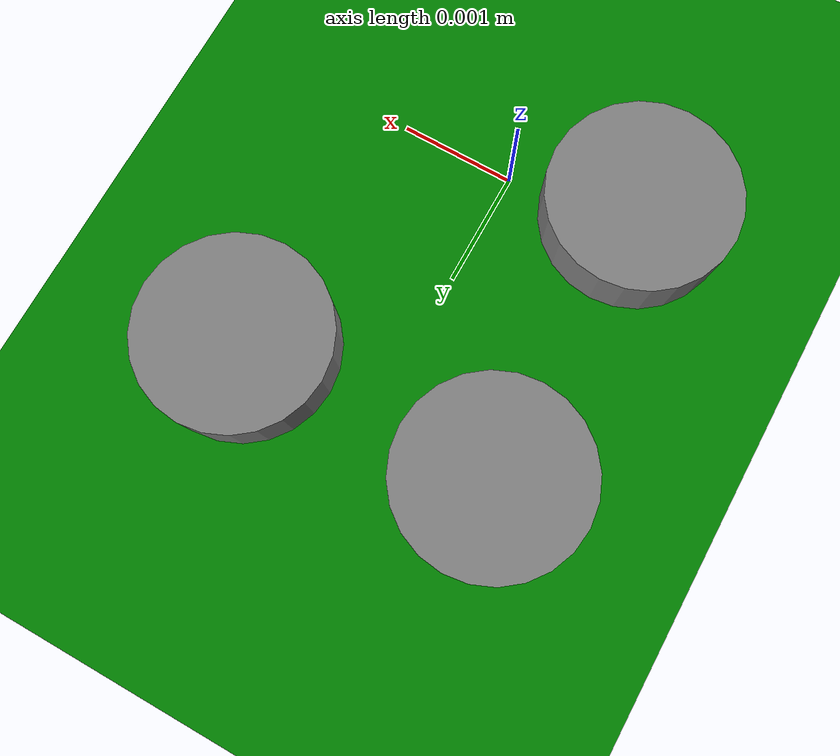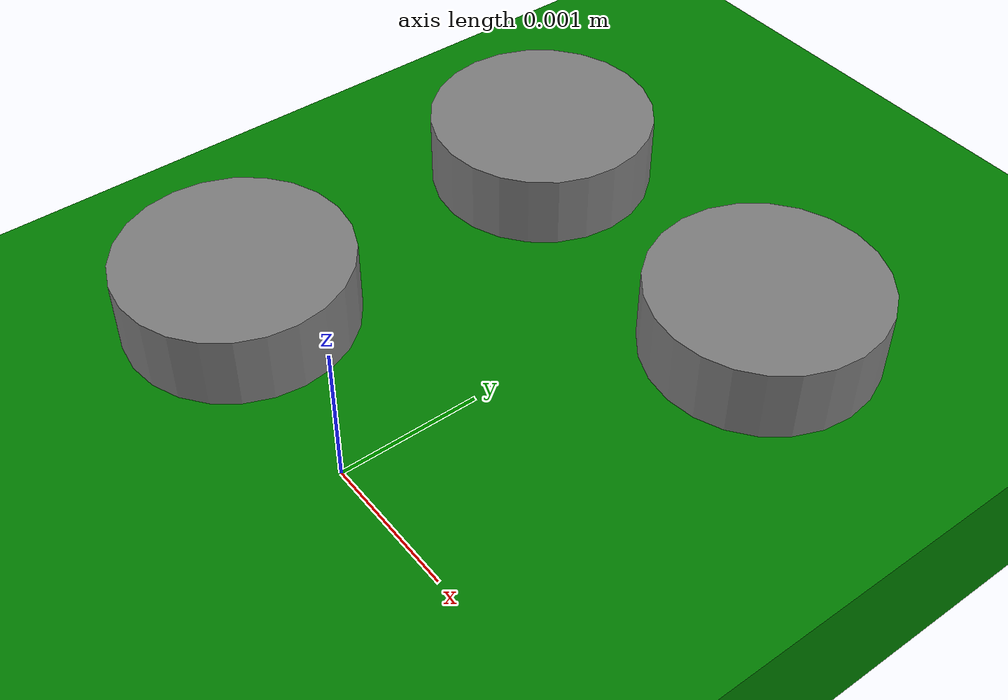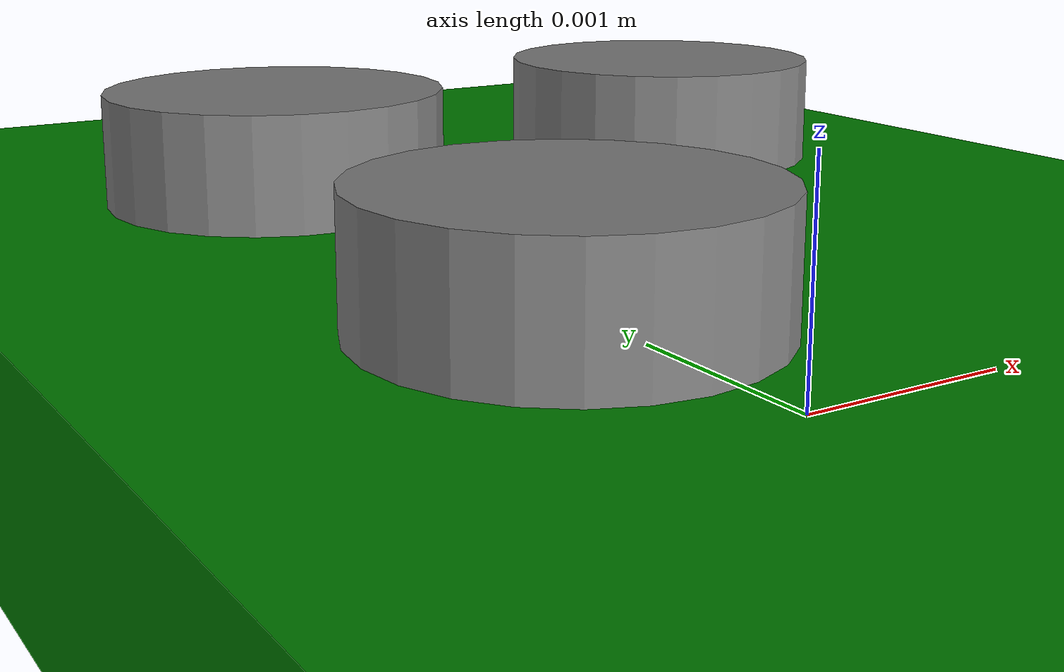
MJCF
<mujoco>
    <worldbody>
        <body pos='0 0 0'>
            <geom type='box' size='0.0027 0.006954999999999999 0.0005' rgba='0 0.5 0 1'/>

            <body pos='0.001065 0.00237 0.0005' name='r-top'>
                <geom type='cylinder' size='0.00075 0.0005'/>
            </body>
            <body pos='-0.001065 0.00237 0.0005' name='l-top'>
                <geom type='cylinder' size='0.00075 0.0005'/>
            </body>
            <body pos='-0.001065 0 0.0005' name='l-center'>
                <geom type='cylinder' size='0.00075 0.0005'/>
            </body>
        </body>
    </worldbody>
</mujoco>
